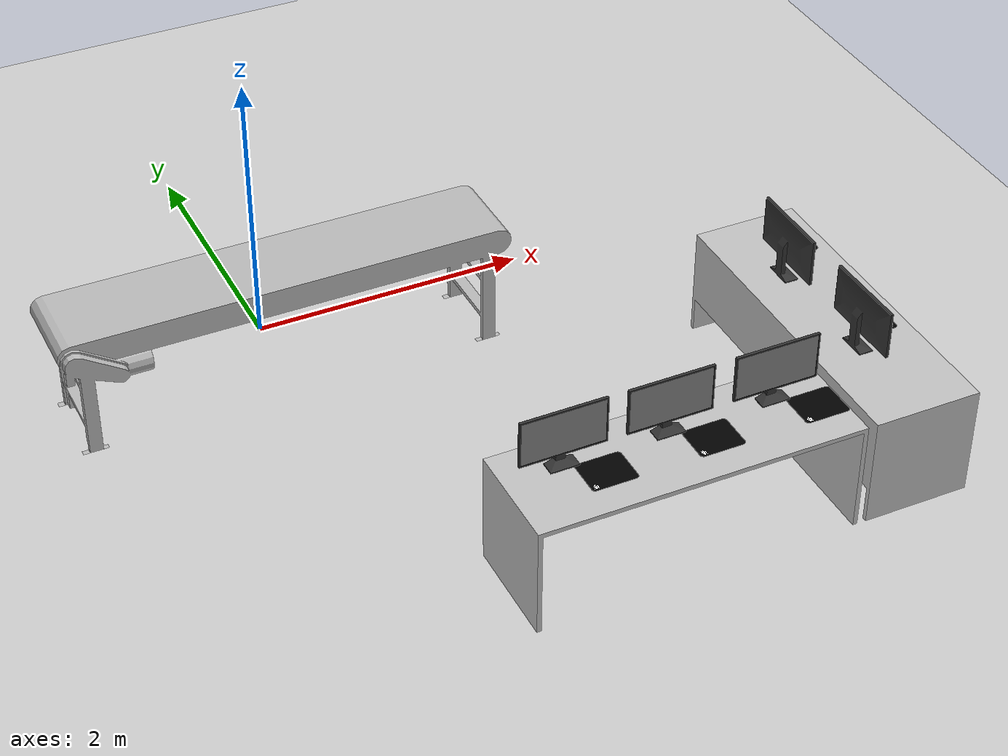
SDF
<sdf version="1.6">
 <world name="aprslab">
  <physics name="1ms" type="ignored">
   <max_step_size>0.001</max_step_size>
   <real_time_factor>1.0</real_time_factor>
  </physics>
  <plugin filename="gz-sim-physics-system" name="gz::sim::systems::Physics"/>
  <plugin filename="gz-sim-user-commands-system" name="gz::sim::systems::UserCommands"/>
  <plugin filename="gz-sim-scene-broadcaster-system" name="gz::sim::systems::SceneBroadcaster"/>
  <light name="sun" type="directional">
   <pose>0 0 10 0 -0 0</pose>
   <diffuse>0.8 0.8 0.8 1</diffuse>
   <specular>0.2 0.2 0.2 1</specular>
   <attenuation>
    <range>1000</range>
    <constant>0.9</constant>
    <linear>0.01</linear>
    <quadratic>0.001</quadratic>
   </attenuation>
   <direction>-0.5 0.1 -0.9</direction>
  </light>
  <model name="ground_plane">
   <static>1</static>
   <link name="link">
    <collision name="collision">
     <geometry><plane><normal>0 0 1</normal><size>100 100</size></plane></geometry>
     <surface><friction><ode><mu>100</mu><mu2>50</mu2></ode></friction></surface>
    </collision>
    <visual name="visual">
     <cast_shadows>0</cast_shadows>
     <geometry><plane><normal>0 0 1</normal><size>100 100</size></plane></geometry>
     <material>
      <script><uri>file://media/materials/scripts/gazebo.material</uri><name>Gazebo/Grey</name></script>
     </material>
    </visual>
    <velocity_decay><linear>0</linear><angular>0</angular></velocity_decay>
   </link>
  </model>
  <scene>
   <ambient>0.4 0.4 0.4 1</ambient>
   <background>0.7 0.7 0.7 1</background>
   <shadows>0</shadows>
   <grid>false</grid>
  </scene>
  <spherical_coordinates>
   <surface_model>EARTH_WGS84</surface_model>
   <latitude_deg>0</latitude_deg>
   <longitude_deg>0</longitude_deg>
   <elevation>0</elevation>
   <heading_deg>0</heading_deg>
  </spherical_coordinates>
  <gravity>0 0 -9.8</gravity>
  <magnetic_field>6e-06 2.3e-05 -4.2e-05</magnetic_field>
  <atmosphere type="adiabatic"/>
  <model name="Computer_Table1">
   <include><static>true</static><uri>model://computer_table</uri></include>
   <pose>-2.568999 -6.568235 0 0 0 0</pose>
  </model>
  <model name="Computer_Table2">
   <include><static>true</static><uri>model://computer_table</uri></include>
   <pose>6.535435 -6.578433 0 0 0 1.568747</pose>
  </model>
  <model name="monitor1">
   <include><static>true</static><uri>model://monitor_1</uri></include>
   <pose>0.846932 -3.055306 0.793659 0 0 0</pose>
  </model>
  <model name="monitor2">
   <include><static>true</static><uri>model://monitor_2</uri></include>
   <pose>1.581318 -3.057039 0.792187 0 0 0</pose>
  </model>
  <model name="monitor3">
   <include><static>true</static><uri>model://monitor_3</uri></include>
   <pose>2.328654 -3.058509 0.792639 0 0 0</pose>
  </model>
  <model name="monitor4">
   <include><static>true</static><uri>model://monitor_4</uri></include>
   <pose>3.101792 -2.819043 0.796560 0 0 1.584804</pose>
  </model>
  <model name="monitor5">
   <include><static>true</static><uri>model://monitor_2</uri></include>
   <pose>3.084432 -1.933557 0.793026 0 0 1.568442</pose>
  </model>
  <model name="mouse_pad1">
   <include><static>true</static><uri>model://mouse_pad</uri></include>
   <pose>0.899351 -3.366318 0.792325 0 0 0</pose>
  </model>
  <model name="mouse_pad2">
   <include><static>true</static><uri>model://mouse_pad</uri></include>
   <pose>1.641818 -3.368774 0.792348 0 0 0</pose>
  </model>
  <model name="mouse_pad3">
   <include><static>true</static><uri>model://mouse_pad</uri></include>
   <pose>2.393255 -3.369696 0.791977 0 0 0</pose>
  </model>
  <model name="mouse_pad4">
   <include><static>true</static><uri>model://mouse_pad</uri></include>
   <pose>3.461037 -2.771012 0.791977 0 0 1.571706</pose>
  </model>
  <model name="mouse_pad5">
   <include><static>true</static><uri>model://mouse_pad</uri></include>
   <pose>3.462044 -1.791097 0.792348 0 0 1.575830</pose>
  </model>
  <include><uri>model://conveyor</uri><pose>-1.869440 -6.984981 0.0700 0 0 0</pose></include>
 </world>
</sdf>

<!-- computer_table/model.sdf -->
<sdf version='1.5'>
  <model name='Computer_Table'>
    <static>true</static>
    <link name="link">
      <pose>3 3 0 0 0 0</pose>
      <visual name="visual">
            <geometry>
                <mesh>
                    <uri>model://computer_table/meshes/computer_table.dae</uri>
                </mesh>
            </geometry>

        </visual>
        <collision name="collision">
            <geometry>
                <mesh>
                   <uri>model://computer_table/meshes/computer_table.dae</uri>
                </mesh>
            </geometry>
        </collision>
    </link>
  </model>
</sdf>

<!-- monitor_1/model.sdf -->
<sdf version='1.6'>
  <model name='monitor_1'>
    <link name='link_6'>
      <pose frame=''>-0.305832 -0.059311 0 0 -0 0</pose>
       <visual name='visual'>
        <pose frame=''>0 0 0 0 -0 0</pose>
        <geometry>
          <mesh>
            <uri>model://monitor_1/meshes/frame.dae</uri>
            <scale>1 1 1</scale>
          </mesh>
        </geometry>
        <material>
          <lighting>1</lighting>
          <ambient>0 0 0 1</ambient>
          <diffuse>0.2 0.2 0.2 1</diffuse>
          <specular>0.01 0.01 0.01 1</specular>
          <emissive>0 0 0 1</emissive>
          <shader type='vertex'>
            <normal_map>__default__</normal_map>
          </shader>
        </material>
        <cast_shadows>1</cast_shadows>
        <transparency>0</transparency>
      </visual>
      <collision name='collision'>
        <laser_retro>0</laser_retro>
        <max_contacts>10</max_contacts>
        <pose frame=''>0 0 0 0 -0 0</pose>
        <geometry>
          <mesh>
            <uri>model://monitor_1/meshes/frame.dae</uri>
            <scale>1 1 1</scale>
          </mesh>
        </geometry>
       </collision>
    </link>
    <link name='link_8'>
      <pose frame=''>-0.307748 -0.058272 0 0 -0 0</pose>
       <visual name='visual'>
        <pose frame=''>0 0 0 0 -0 0</pose>
        <geometry>
          <mesh>
            <uri>model://monitor_1/meshes/screen1.dae</uri>
            <scale>1 1 1</scale>
          </mesh>
        </geometry>
     <material>
          <script>
            <uri>model://monitor_1/materials/scripts</uri>
            <uri>model://monitor_1/materials/textures</uri>
            <name>monitor_screen</name>
          </script>
        </material>
        <cast_shadows>1</cast_shadows>
        <transparency>0</transparency>
      </visual>
      <collision name='collision'>
        <laser_retro>0</laser_retro>
        <max_contacts>10</max_contacts>
        <pose frame=''>0 0 0 0 -0 0</pose>
        <geometry>
          <mesh>
            <uri>model://monitor_1/meshes/screen1.dae</uri>
            <scale>1 1 1</scale>
          </mesh>
        </geometry>
      </collision>
    </link>
    <static>1</static>
    <allow_auto_disable>1</allow_auto_disable>
  </model>
</sdf>

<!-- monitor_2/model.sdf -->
<sdf version='1.6'>
  <model name='monitor_2'>
    <link name='link_6'>
      <pose frame=''>-0.305832 -0.059311 0 0 -0 0</pose>
       <visual name='visual'>
        <pose frame=''>0 0 0 0 -0 0</pose>
        <geometry>
          <mesh>
            <uri>model://monitor_2/meshes/frame.dae</uri>
            <scale>1 1 1</scale>
          </mesh>
        </geometry>
        <material>
          <lighting>1</lighting>
          <ambient>0 0 0 1</ambient>
          <diffuse>0.2 0.2 0.2 1</diffuse>
          <specular>0.01 0.01 0.01 1</specular>
          <emissive>0 0 0 1</emissive>
          <shader type='vertex'>
            <normal_map>__default__</normal_map>
          </shader>
        </material>
        <cast_shadows>1</cast_shadows>
        <transparency>0</transparency>
      </visual>
      <collision name='collision'>
        <laser_retro>0</laser_retro>
        <max_contacts>10</max_contacts>
        <pose frame=''>0 0 0 0 -0 0</pose>
        <geometry>
          <mesh>
            <uri>model://monitor_2/meshes/frame.dae</uri>
            <scale>1 1 1</scale>
          </mesh>
        </geometry>
       </collision>
    </link>
    <link name='link_8'>
      <pose frame=''>-0.307748 -0.058272 0 0 -0 0</pose>
       <visual name='visual'>
        <pose frame=''>0 0 0 0 -0 0</pose>
        <geometry>
          <mesh>
            <uri>model://monitor_2/meshes/screen1.dae</uri>
            <scale>1 1 1</scale>
          </mesh>
        </geometry>
     <material>
          <script>
            <uri>model://monitor_2/materials/scripts</uri>
            <uri>model://monitor_2/materials/textures</uri>
            <name>monitor_screen_2</name>
          </script>
        </material>
        <cast_shadows>1</cast_shadows>
        <transparency>0</transparency>
      </visual>
      <collision name='collision'>
        <laser_retro>0</laser_retro>
        <max_contacts>10</max_contacts>
        <pose frame=''>0 0 0 0 -0 0</pose>
        <geometry>
          <mesh>
            <uri>model://monitor_2/meshes/screen1.dae</uri>
            <scale>1 1 1</scale>
          </mesh>
        </geometry>
      </collision>
    </link>
    <static>1</static>
    <allow_auto_disable>1</allow_auto_disable>
  </model>
</sdf>

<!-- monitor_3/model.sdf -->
<sdf version='1.6'>
  <model name='monitor_3'>
    <link name='link_6'>
      <pose frame=''>-0.305832 -0.059311 0 0 -0 0</pose>
       <visual name='visual'>
        <pose frame=''>0 0 0 0 -0 0</pose>
        <geometry>
          <mesh>
            <uri>model://monitor_3/meshes/frame.dae</uri>
            <scale>1 1 1</scale>
          </mesh>
        </geometry>
        <material>
          <lighting>1</lighting>
          <ambient>0 0 0 1</ambient>
          <diffuse>0.2 0.2 0.2 1</diffuse>
          <specular>0.01 0.01 0.01 1</specular>
          <emissive>0 0 0 1</emissive>
          <shader type='vertex'>
            <normal_map>__default__</normal_map>
          </shader>
        </material>
        <cast_shadows>1</cast_shadows>
        <transparency>0</transparency>
      </visual>
      <collision name='collision'>
        <laser_retro>0</laser_retro>
        <max_contacts>10</max_contacts>
        <pose frame=''>0 0 0 0 -0 0</pose>
        <geometry>
          <mesh>
            <uri>model://monitor_3/meshes/frame.dae</uri>
            <scale>1 1 1</scale>
          </mesh>
        </geometry>
       </collision>
    </link>
    <link name='link_8'>
      <pose frame=''>-0.307748 -0.058272 0 0 -0 0</pose>
       <visual name='visual'>
        <pose frame=''>0 0 0 0 -0 0</pose>
        <geometry>
          <mesh>
            <uri>model://monitor_3/meshes/screen1.dae</uri>
            <scale>1 1 1</scale>
          </mesh>
        </geometry>
     <material>
          <script>
            <uri>model://monitor_3/materials/scripts</uri>
            <uri>model://monitor_3/materials/textures</uri>
            <name>monitor_screen_3</name>
          </script>
        </material>
        <cast_shadows>1</cast_shadows>
        <transparency>0</transparency>
      </visual>
      <collision name='collision'>
        <laser_retro>0</laser_retro>
        <max_contacts>10</max_contacts>
        <pose frame=''>0 0 0 0 -0 0</pose>
        <geometry>
          <mesh>
            <uri>model://monitor_3/meshes/screen1.dae</uri>
            <scale>1 1 1</scale>
          </mesh>
        </geometry>
      </collision>
    </link>
    <static>1</static>
    <allow_auto_disable>1</allow_auto_disable>
  </model>
</sdf>

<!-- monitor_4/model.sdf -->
<sdf version='1.6'>
  <model name='monitor_4'>
    <link name='link_6'>
      <pose frame=''>-0.305832 -0.059311 0 0 -0 0</pose>
       <visual name='visual'>
        <pose frame=''>0 0 0 0 -0 0</pose>
        <geometry>
          <mesh>
            <uri>model://monitor_4/meshes/frame.dae</uri>
            <scale>1 1 1</scale>
          </mesh>
        </geometry>
        <material>
          <lighting>1</lighting>
          <ambient>0 0 0 1</ambient>
          <diffuse>0.2 0.2 0.2 1</diffuse>
          <specular>0.01 0.01 0.01 1</specular>
          <emissive>0 0 0 1</emissive>
          <shader type='vertex'>
            <normal_map>__default__</normal_map>
          </shader>
        </material>
        <cast_shadows>1</cast_shadows>
        <transparency>0</transparency>
      </visual>
      <collision name='collision'>
        <laser_retro>0</laser_retro>
        <max_contacts>10</max_contacts>
        <pose frame=''>0 0 0 0 -0 0</pose>
        <geometry>
          <mesh>
            <uri>model://monitor_4/meshes/frame.dae</uri>
            <scale>1 1 1</scale>
          </mesh>
        </geometry>
       </collision>
    </link>
    <link name='link_8'>
      <pose frame=''>-0.307748 -0.058272 0 0 -0 0</pose>
       <visual name='visual'>
        <pose frame=''>0 0 0 0 -0 0</pose>
        <geometry>
          <mesh>
            <uri>model://monitor_4/meshes/screen1.dae</uri>
            <scale>1 1 1</scale>
          </mesh>
        </geometry>
     <material>
          <script>
            <uri>model://monitor_4/materials/scripts</uri>
            <uri>model://monitor_4/materials/textures</uri>
            <name>monitor_screen_4</name>
          </script>
        </material>
        <cast_shadows>1</cast_shadows>
        <transparency>0</transparency>
      </visual>
      <collision name='collision'>
        <laser_retro>0</laser_retro>
        <max_contacts>10</max_contacts>
        <pose frame=''>0 0 0 0 -0 0</pose>
        <geometry>
          <mesh>
            <uri>model://monitor_4/meshes/screen1.dae</uri>
            <scale>1 1 1</scale>
          </mesh>
        </geometry>
      </collision>
    </link>
    <static>1</static>
    <allow_auto_disable>1</allow_auto_disable>
  </model>
</sdf>

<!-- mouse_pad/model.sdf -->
<sdf version='1.5'>
  <model name='Mouse_Pad'>
    <static>true</static>
    <link name="link">
      <pose>0 0 0 0 0 0</pose>
      <visual name="visual">
            <geometry>
                <mesh>
                    <uri>model://mouse_pad/meshes/mouse_pad.dae</uri>
                </mesh>
            </geometry>

        </visual>
        <collision name="collision">
            <geometry>
                <mesh>
                   <uri>model://mouse_pad/meshes/mouse_pad.dae</uri>
                </mesh>
            </geometry>
        </collision>
    </link>
  </model>
</sdf>

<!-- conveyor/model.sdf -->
<sdf version="1.6">
  <!--model name="conveyor_belt"-->

    <model name="conveyor_belt_fixed">
      <static>1</static>
      <pose>0 0 0 0 0 0</pose>
      <link name="link">
        <pose>0 0 0 0 0 0</pose>
        <visual name="belt_visual">
          <geometry>
            <mesh>
              <uri>model://conveyor/meshes/revised_conveyor.stl</uri>
              <scale>1 1 1</scale>
            </mesh>
          </geometry>
        </visual>

      </link>
    </model>

  <!--/model-->
</sdf>
